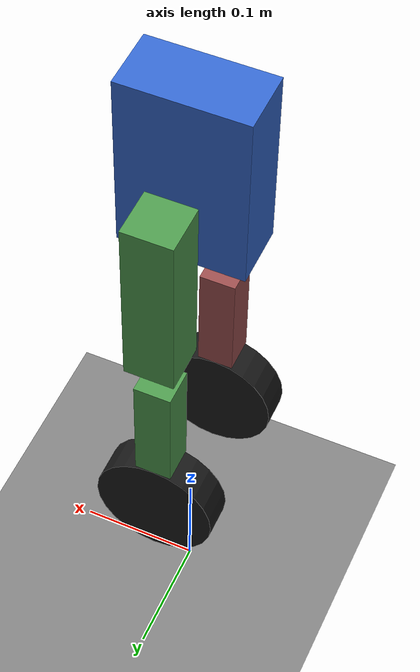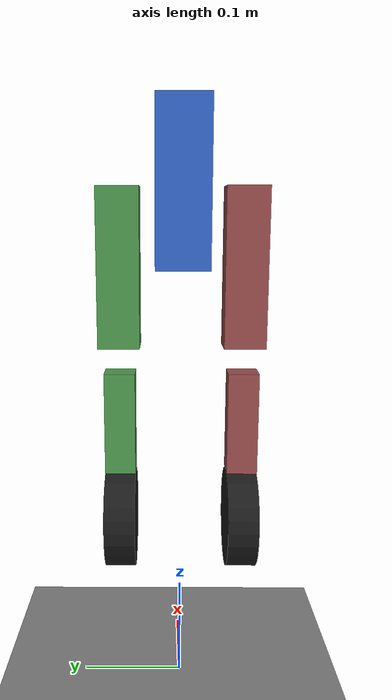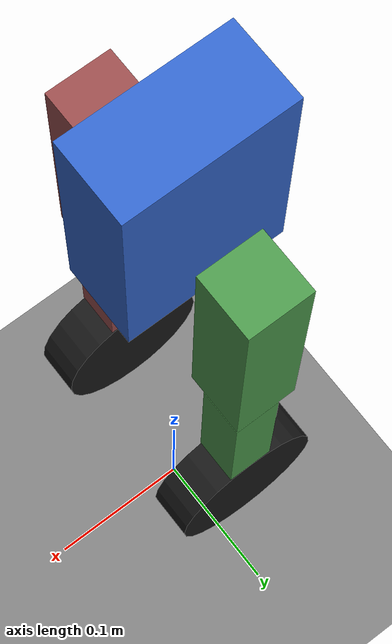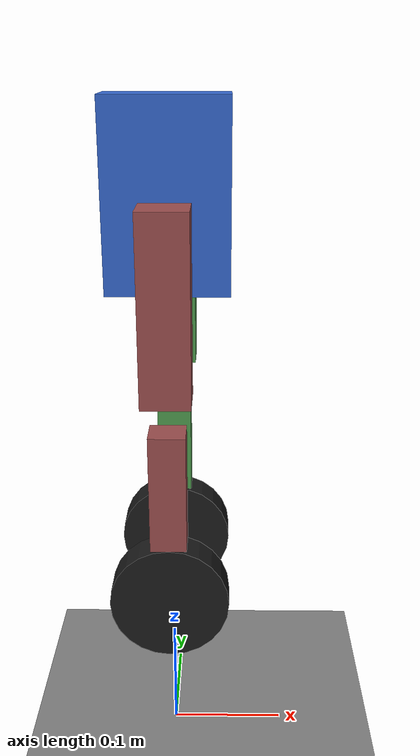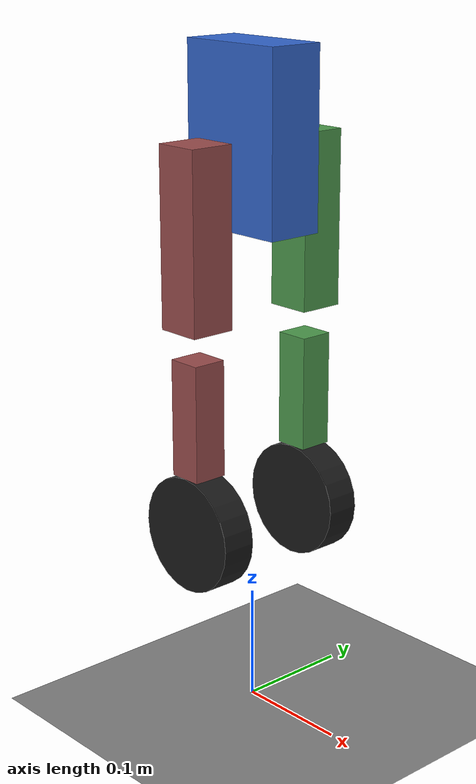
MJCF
<mujoco model="wheeled_robot">
  <option timestep="0.005" gravity="0 0 -9.81"/>

  <default>
    <joint damping="0.1"/>
    <geom contype="1" conaffinity="1" condim="3"/>
  </default>

  <worldbody>
    <!-- Ground plane -->
    <geom name="floor" type="plane" size="5 5 0.1" rgba="0.5 0.5 0.5 1" friction="1 0.005 0.0001"/>

    <!-- Torso: floats via freejoint, starts at z=0.5 -->
    <body name="torso" pos="0 0 0.5">
      <freejoint name="root"/>
      <geom name="torso_geom" type="box" size="0.05 0.025 0.075" mass="2.0" rgba="0.2 0.4 0.8 1"/>
      <site name="torso_imu" pos="0 0 0"/>

      <!-- LEFT LEG -->
      <body name="left_thigh" pos="0 0.06 -0.075">
        <geom name="left_thigh_geom" type="box" size="0.02 0.02 0.075" mass="0.3" rgba="0.3 0.6 0.3 1"/>
        <body name="left_shank" pos="0 0 -0.15">
          <joint name="left_knee_joint" type="hinge" axis="0 1 0" range="-1.5 0.2" damping="0.5"/>
          <geom name="left_shank_geom" type="box" size="0.015 0.015 0.05" mass="0.2" rgba="0.3 0.6 0.3 1"/>
          <body name="left_wheel_body" pos="0 0 -0.1">
            <joint name="left_wheel_joint" type="hinge" axis="0 1 0" damping="0.05"/>
            <!-- cylinder axis along Y, radius=0.05, length=0.03 -->
            <geom name="left_wheel_geom" type="cylinder" size="0.05 0.015" mass="0.3"
                  fromto="0 -0.015 0 0 0.015 0" rgba="0.1 0.1 0.1 1" friction="1 0.005 0.0001"/>
          </body>
        </body>
      </body>

      <!-- RIGHT LEG -->
      <body name="right_thigh" pos="0 -0.06 -0.075">
        <geom name="right_thigh_geom" type="box" size="0.02 0.02 0.075" mass="0.3" rgba="0.6 0.3 0.3 1"/>
        <body name="right_shank" pos="0 0 -0.15">
          <joint name="right_knee_joint" type="hinge" axis="0 1 0" range="-1.5 0.2" damping="0.5"/>
          <geom name="right_shank_geom" type="box" size="0.015 0.015 0.05" mass="0.2" rgba="0.6 0.3 0.3 1"/>
          <body name="right_wheel_body" pos="0 0 -0.1">
            <joint name="right_wheel_joint" type="hinge" axis="0 1 0" damping="0.05"/>
            <geom name="right_wheel_geom" type="cylinder" size="0.05 0.015" mass="0.3"
                  fromto="0 -0.015 0 0 0.015 0" rgba="0.1 0.1 0.1 1" friction="1 0.005 0.0001"/>
          </body>
        </body>
      </body>

    </body>
  </worldbody>

  <actuator>
    <!-- Knee: position-controlled -->
    <position name="left_knee_act"  joint="left_knee_joint"  kp="40" kv="2"/>
    <position name="right_knee_act" joint="right_knee_joint" kp="40" kv="2"/>
    <!-- Wheels: velocity-controlled -->
    <velocity name="left_wheel_act"  joint="left_wheel_joint"  kv="2.0"/>
    <velocity name="right_wheel_act" joint="right_wheel_joint" kv="2.0"/>
  </actuator>

  <sensor>
    <gyro          name="torso_gyro"  site="torso_imu"/>
    <accelerometer name="torso_accel" site="torso_imu"/>
    <actuatorpos   name="left_knee_pos"   actuator="left_knee_act"/>
    <actuatorpos   name="right_knee_pos"  actuator="right_knee_act"/>
    <actuatorvel   name="left_wheel_vel"  actuator="left_wheel_act"/>
    <actuatorvel   name="right_wheel_vel" actuator="right_wheel_act"/>
  </sensor>

  <keyframe>
    <key name="home" qpos="0 0 0.375 1 0 0 0  0 0  0 0"/>
  </keyframe>

</mujoco>
